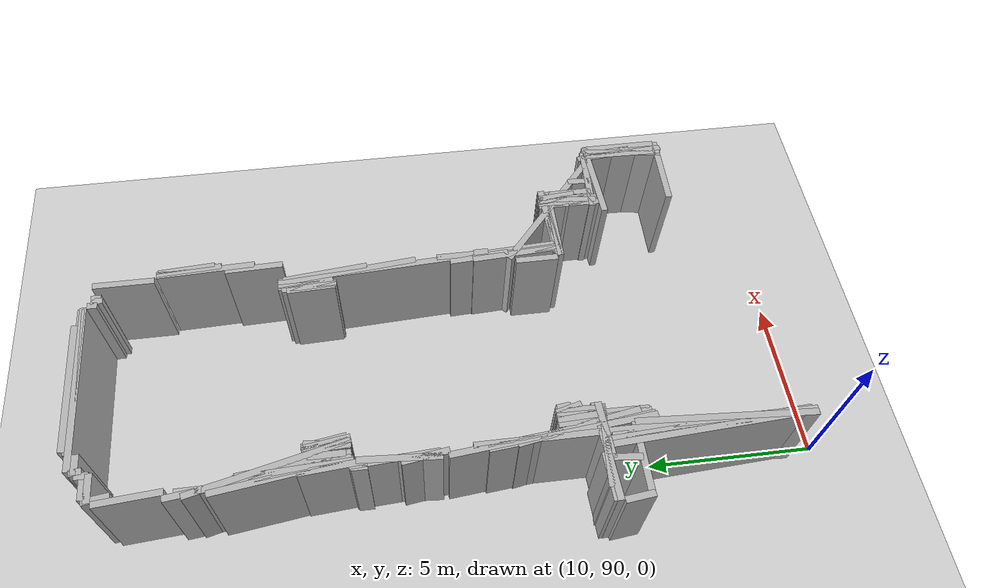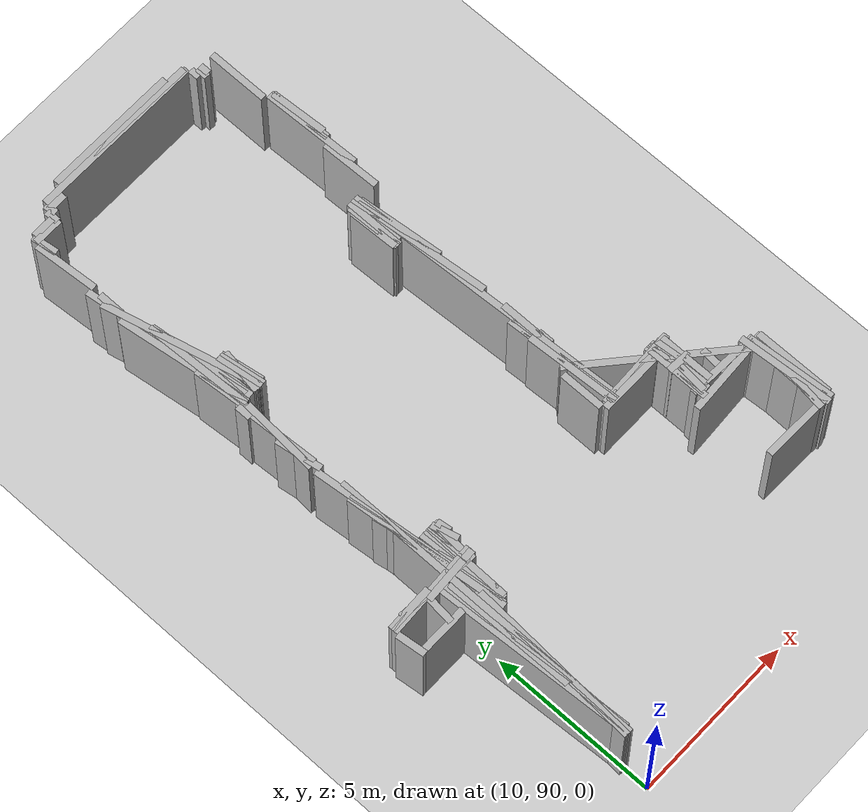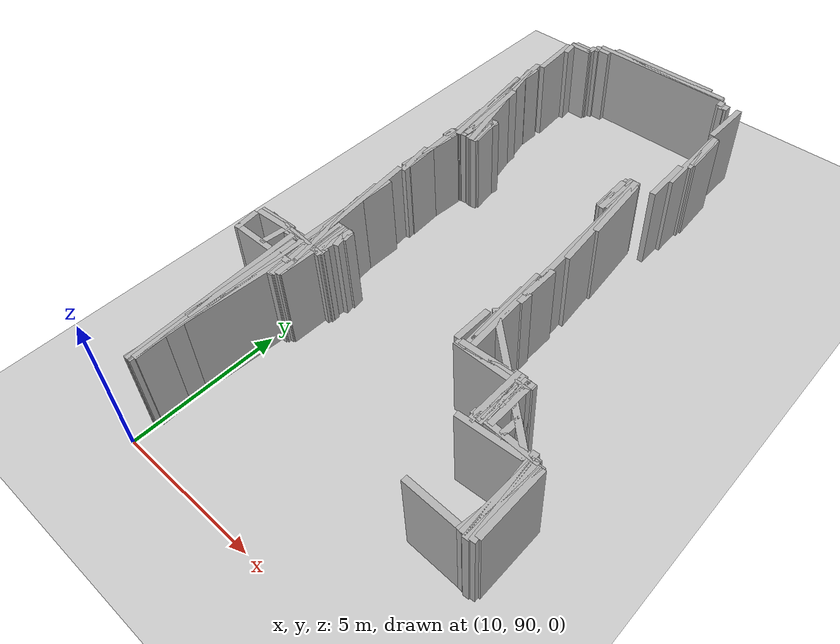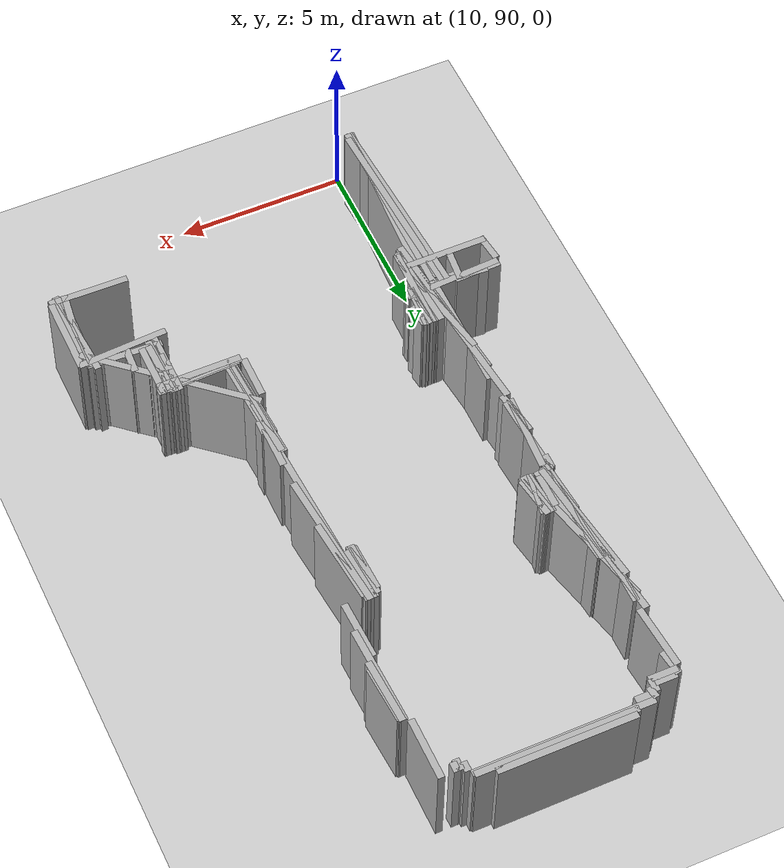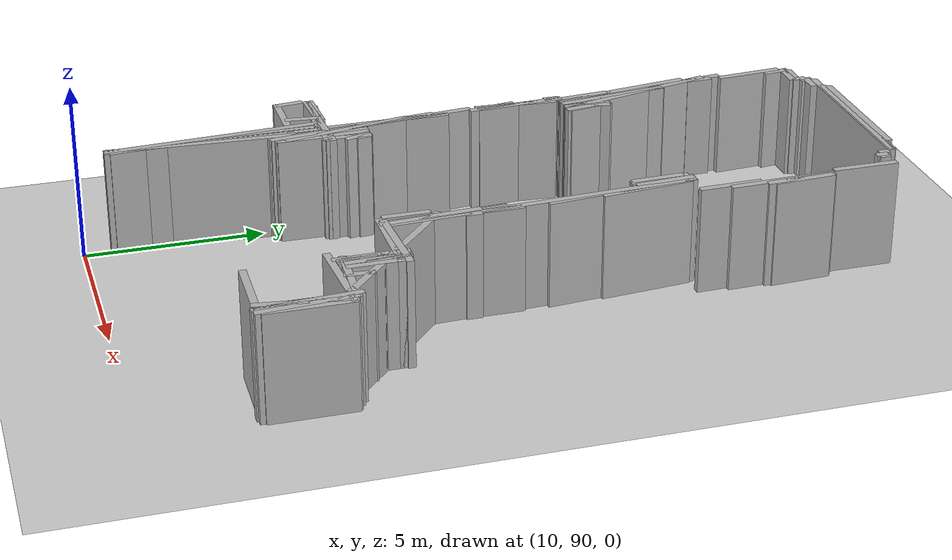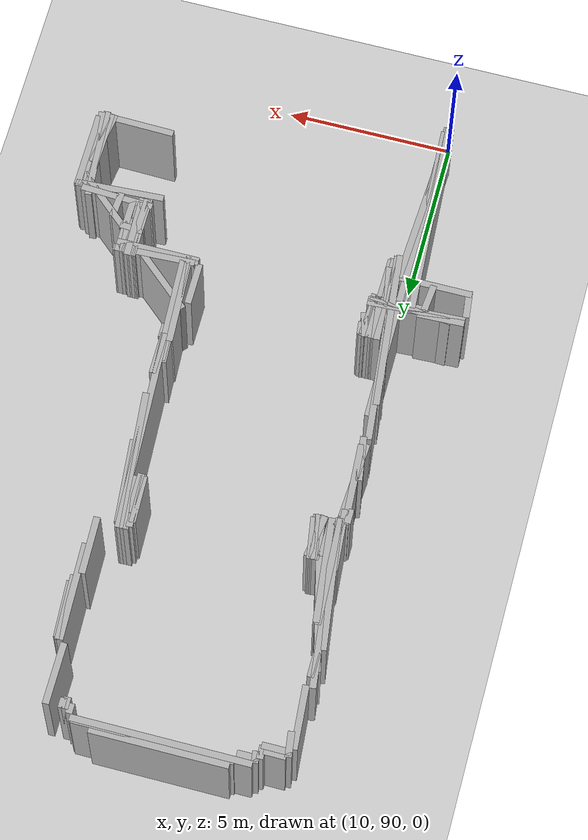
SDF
<sdf version="1.6">
 <world name="aboureyhan">
  <model name="ground_plane">
   <static>true</static>
   <link name="link">
    <collision name="collision">
     <geometry><plane><normal>0 0 1</normal><size>100 100</size></plane></geometry>
    </collision>
    <visual name="visual">
     <geometry><plane><normal>0 0 1</normal><size>500 500</size></plane></geometry>
     <material>
      <ambient>0.8 0.8 0.8 1</ambient>
      <diffuse>0.8 0.8 0.8 1</diffuse>
      <specular>0.8 0.8 0.8 1</specular>
     </material>
    </visual>
   </link>
  </model>
  <model name="wall_8">
   <static>true</static>
   <pose>9.875 102.55 1.5 0 0 -1.5108681716736894</pose>
   <link name="link">
    <collision name="collision">
     <geometry><box><size>2.5044959572736385 0.2 3.0</size></box></geometry>
    </collision>
    <visual name="visual">
     <geometry><box><size>2.5044959572736385 0.2 3.0</size></box></geometry>
     <material><ambient>0.5 0.5 0.5 1</ambient><diffuse>0.7 0.7 0.7 1</diffuse></material>
    </visual>
   </link>
  </model>
  <model name="wall_25">
   <static>true</static>
   <pose>9.775 93.75000000000001 1.5 0 0 -1.5125290238253635</pose>
   <link name="link">
    <collision name="collision"><geometry><box><size>6.010199663904686 0.2 3.0</size></box></geometry></collision>
    <visual name="visual">
     <geometry><box><size>6.010199663904686 0.2 3.0</size></box></geometry>
     <material><ambient>0.5 0.5 0.5 1</ambient><diffuse>0.7 0.7 0.7 1</diffuse></material>
    </visual>
   </link>
  </model>
  <model name="wall_41">
   <static>true</static>
   <pose>9.75 103.525 1.5 0 0 -1.5707963267948966</pose>
   <link name="link">
    <collision name="collision">
     <geometry><box><size>0.45000000000001705 0.2 3.0</size></box></geometry>
    </collision>
    <visual name="visual">
     <geometry><box><size>0.45000000000001705 0.2 3.0</size></box></geometry>
     <material><ambient>0.5 0.5 0.5 1</ambient><diffuse>0.7 0.7 0.7 1</diffuse></material>
    </visual>
   </link>
  </model>
  <model name="wall_42">
   <static>true</static>
   <pose>15.725000000000001 104.625 1.5 0 0 -1.5405025668761234</pose>
   <link name="link">
    <collision name="collision">
     <geometry><box><size>1.6507574019219233 0.2 3.0</size></box></geometry>
    </collision>
    <visual name="visual">
     <geometry><box><size>1.6507574019219233 0.2 3.0</size></box></geometry>
     <material><ambient>0.5 0.5 0.5 1</ambient><diffuse>0.7 0.7 0.7 1</diffuse></material>
    </visual>
   </link>
  </model>
  <model name="wall_48">
   <static>true</static>
   <pose>16.700000000000003 107.72500000000001 1.5 0 0 -1.5369109968907797</pose>
   <link name="link">
    <collision name="collision"><geometry><box><size>2.951694428629077 0.2 3.0</size></box></geometry></collision>
    <visual name="visual">
     <geometry><box><size>2.951694428629077 0.2 3.0</size></box></geometry>
     <material><ambient>0.5 0.5 0.5 1</ambient><diffuse>0.7 0.7 0.7 1</diffuse></material>
    </visual>
   </link>
  </model>
  <model name="wall_51">
   <static>true</static>
   <pose>9.825000000000001 104.275 1.5 0 0 -1.4898922276396647</pose>
   <link name="link">
    <collision name="collision">
     <geometry><box><size>1.8560711193270532 0.2 3.0</size></box></geometry>
    </collision>
    <visual name="visual">
     <geometry><box><size>1.8560711193270532 0.2 3.0</size></box></geometry>
     <material><ambient>0.5 0.5 0.5 1</ambient><diffuse>0.7 0.7 0.7 1</diffuse></material>
    </visual>
   </link>
  </model>
  <model name="wall_52">
   <static>true</static>
   <pose>10.025 105.275 1.5 0 0 -1.4601391056210018</pose>
   <link name="link">
    <collision name="collision"><geometry><box><size>3.169384798348101 0.2 3.0</size></box></geometry></collision>
    <visual name="visual">
     <geometry><box><size>3.169384798348101 0.2 3.0</size></box></geometry>
     <material><ambient>0.5 0.5 0.5 1</ambient><diffuse>0.7 0.7 0.7 1</diffuse></material>
    </visual>
   </link>
  </model>
  <model name="wall_81">
   <static>true</static>
   <pose>9.575000000000001 109.65 1.5 0 0 -1.492012365805752</pose>
   <link name="link">
    <collision name="collision">
     <geometry><box><size>1.9059118552545977 0.2 3.0</size></box></geometry>
    </collision>
    <visual name="visual">
     <geometry><box><size>1.9059118552545977 0.2 3.0</size></box></geometry>
     <material><ambient>0.5 0.5 0.5 1</ambient><diffuse>0.7 0.7 0.7 1</diffuse></material>
    </visual>
   </link>
  </model>
  <model name="wall_83">
   <static>true</static>
   <pose>9.9 93.825 1.5 0 0 -1.519559159391478</pose>
   <link name="link">
    <collision name="collision"><geometry><box><size>5.857687256930014 0.2 3.0</size></box></geometry></collision>
    <visual name="visual">
     <geometry><box><size>5.857687256930014 0.2 3.0</size></box></geometry>
     <material><ambient>0.5 0.5 0.5 1</ambient><diffuse>0.7 0.7 0.7 1</diffuse></material>
    </visual>
   </link>
  </model>
  <model name="wall_90">
   <static>true</static>
   <pose>10.100000000000001 98.17500000000001 1.5 0 0 -1.4685896086876427</pose>
   <link name="link">
    <collision name="collision"><geometry><box><size>5.880688735173792 0.2 3.0</size></box></geometry></collision>
    <visual name="visual">
     <geometry><box><size>5.880688735173792 0.2 3.0</size></box></geometry>
     <material><ambient>0.5 0.5 0.5 1</ambient><diffuse>0.7 0.7 0.7 1</diffuse></material>
    </visual>
   </link>
  </model>
  <model name="wall_108">
   <static>true</static>
   <pose>18.400000000000002 96.35000000000001 1.5 0 0 1.5707963267948966</pose>
   <link name="link">
    <collision name="collision">
     <geometry><box><size>1.6999999999999886 0.2 3.0</size></box></geometry>
    </collision>
    <visual name="visual">
     <geometry><box><size>1.6999999999999886 0.2 3.0</size></box></geometry>
     <material><ambient>0.5 0.5 0.5 1</ambient><diffuse>0.7 0.7 0.7 1</diffuse></material>
    </visual>
   </link>
  </model>
  <model name="wall_119">
   <static>true</static>
   <pose>9.75 106.22500000000001 1.5 0 0 -1.4525388176558172</pose>
   <link name="link">
    <collision name="collision"><geometry><box><size>5.085518655948488 0.2 3.0</size></box></geometry></collision>
    <visual name="visual">
     <geometry><box><size>5.085518655948488 0.2 3.0</size></box></geometry>
     <material><ambient>0.5 0.5 0.5 1</ambient><diffuse>0.7 0.7 0.7 1</diffuse></material>
    </visual>
   </link>
  </model>
  <model name="wall_127">
   <static>true</static>
   <pose>15.675000000000002 104.575 1.5 0 0 -1.536327225795388</pose>
   <link name="link">
    <collision name="collision">
     <geometry><box><size>1.4508618128546795 0.2 3.0</size></box></geometry>
    </collision>
    <visual name="visual">
     <geometry><box><size>1.4508618128546795 0.2 3.0</size></box></geometry>
     <material><ambient>0.5 0.5 0.5 1</ambient><diffuse>0.7 0.7 0.7 1</diffuse></material>
    </visual>
   </link>
  </model>
  <model name="wall_138">
   <static>true</static>
   <pose>10.500000000000002 104.35000000000001 1.5 0 0 1.4181469983996333</pose>
   <link name="link">
    <collision name="collision">
     <geometry><box><size>1.3152946437966018 0.2 3.0</size></box></geometry>
    </collision>
    <visual name="visual">
     <geometry><box><size>1.3152946437966018 0.2 3.0</size></box></geometry>
     <material><ambient>0.5 0.5 0.5 1</ambient><diffuse>0.7 0.7 0.7 1</diffuse></material>
    </visual>
   </link>
  </model>
  <model name="wall_158">
   <static>true</static>
   <pose>9.875 105.27499999999999 1.5 0 0 -1.5246752107803858</pose>
   <link name="link">
    <collision name="collision"><geometry><box><size>3.253459696999488 0.2 3.0</size></box></geometry></collision>
    <visual name="visual">
     <geometry><box><size>3.253459696999488 0.2 3.0</size></box></geometry>
     <material><ambient>0.5 0.5 0.5 1</ambient><diffuse>0.7 0.7 0.7 1</diffuse></material>
    </visual>
   </link>
  </model>
  <model name="wall_174">
   <static>true</static>
   <pose>15.950000000000003 97.65 1.5 0 0 1.5707963267948966</pose>
   <link name="link">
    <collision name="collision"><geometry><box><size>1.299999999999983 0.2 3.0</size></box></geometry></collision>
    <visual name="visual">
     <geometry><box><size>1.299999999999983 0.2 3.0</size></box></geometry>
     <material><ambient>0.5 0.5 0.5 1</ambient><diffuse>0.7 0.7 0.7 1</diffuse></material>
    </visual>
   </link>
  </model>
  <model name="wall_179">
   <static>true</static>
   <pose>16.225 101.275 1.5 0 0 -1.5182132651839544</pose>
   <link name="link">
    <collision name="collision"><geometry><box><size>8.561833915698184 0.2 3.0</size></box></geometry></collision>
    <visual name="visual">
     <geometry><box><size>8.561833915698184 0.2 3.0</size></box></geometry>
     <material><ambient>0.5 0.5 0.5 1</ambient><diffuse>0.7 0.7 0.7 1</diffuse></material>
    </visual>
   </link>
  </model>
  <model name="wall_216">
   <static>true</static>
   <pose>13.125000000000002 111.50000000000001 1.5 0 0 0.0</pose>
   <link name="link">
    <collision name="collision"><geometry><box><size>4.050000000000001 0.2 3.0</size></box></geometry></collision>
    <visual name="visual">
     <geometry><box><size>4.050000000000001 0.2 3.0</size></box></geometry>
     <material><ambient>0.5 0.5 0.5 1</ambient><diffuse>0.7 0.7 0.7 1</diffuse></material>
    </visual>
   </link>
  </model>
  <model name="wall_235">
   <static>true</static>
   <pose>19.825000000000003 94.2 1.5 0 0 1.5515679276951893</pose>
   <link name="link">
    <collision name="collision">
     <geometry><box><size>2.6004807247891915 0.2 3.0</size></box></geometry>
    </collision>
    <visual name="visual">
     <geometry><box><size>2.6004807247891915 0.2 3.0</size></box></geometry>
     <material><ambient>0.5 0.5 0.5 1</ambient><diffuse>0.7 0.7 0.7 1</diffuse></material>
    </visual>
   </link>
  </model>
  <model name="wall_258">
   <static>true</static>
   <pose>9.725 105.625 1.5 0 0 -1.4324453566177717</pose>
   <link name="link">
    <collision name="collision">
     <geometry><box><size>3.9881073205218707 0.2 3.0</size></box></geometry>
    </collision>
    <visual name="visual">
     <geometry><box><size>3.9881073205218707 0.2 3.0</size></box></geometry>
     <material><ambient>0.5 0.5 0.5 1</ambient><diffuse>0.7 0.7 0.7 1</diffuse></material>
    </visual>
   </link>
  </model>
  <model name="wall_259">
   <static>true</static>
   <pose>17.950000000000003 96.25000000000001 1.5 0 0 1.5707963267948966</pose>
   <link name="link">
    <collision name="collision"><geometry><box><size>2.0 0.2 3.0</size></box></geometry></collision>
    <visual name="visual">
     <geometry><box><size>2.0 0.2 3.0</size></box></geometry>
     <material><ambient>0.5 0.5 0.5 1</ambient><diffuse>0.7 0.7 0.7 1</diffuse></material>
    </visual>
   </link>
  </model>
  <model name="wall_261">
   <static>true</static>
   <pose>10.55 104.375 1.5 0 0 -1.4237179714064914</pose>
   <link name="link">
    <collision name="collision">
     <geometry><box><size>1.3647344063956128 0.2 3.0</size></box></geometry>
    </collision>
    <visual name="visual">
     <geometry><box><size>1.3647344063956128 0.2 3.0</size></box></geometry>
     <material><ambient>0.5 0.5 0.5 1</ambient><diffuse>0.7 0.7 0.7 1</diffuse></material>
    </visual>
   </link>
  </model>
  <model name="wall_262">
   <static>true</static>
   <pose>18.175000000000004 96.35000000000001 1.5 0 0 -1.541393038590891</pose>
   <link name="link">
    <collision name="collision">
     <geometry><box><size>1.7007351351694835 0.2 3.0</size></box></geometry>
    </collision>
    <visual name="visual">
     <geometry><box><size>1.7007351351694835 0.2 3.0</size></box></geometry>
     <material><ambient>0.5 0.5 0.5 1</ambient><diffuse>0.7 0.7 0.7 1</diffuse></material>
    </visual>
   </link>
  </model>
  <model name="wall_264">
   <static>true</static>
   <pose>13.350000000000001 111.35000000000001 1.5 0 0 0.0</pose>
   <link name="link">
    <collision name="collision"><geometry><box><size>4.700000000000003 0.2 3.0</size></box></geometry></collision>
    <visual name="visual">
     <geometry><box><size>4.700000000000003 0.2 3.0</size></box></geometry>
     <material><ambient>0.5 0.5 0.5 1</ambient><diffuse>0.7 0.7 0.7 1</diffuse></material>
    </visual>
   </link>
  </model>
  <model name="wall_271">
   <static>true</static>
   <pose>16.25 98.575 1.5 0 0 -1.5128901215467894</pose>
   <link name="link">
    <collision name="collision"><geometry><box><size>3.455792239125483 0.2 3.0</size></box></geometry></collision>
    <visual name="visual">
     <geometry><box><size>3.455792239125483 0.2 3.0</size></box></geometry>
     <material><ambient>0.5 0.5 0.5 1</ambient><diffuse>0.7 0.7 0.7 1</diffuse></material>
    </visual>
   </link>
  </model>
  <model name="wall_276">
   <static>true</static>
   <pose>16.625 106.27499999999999 1.5 0 0 -1.5422326689561363</pose>
   <link name="link">
    <collision name="collision">
     <geometry><box><size>1.7507141400011597 0.2 3.0</size></box></geometry>
    </collision>
    <visual name="visual">
     <geometry><box><size>1.7507141400011597 0.2 3.0</size></box></geometry>
     <material><ambient>0.5 0.5 0.5 1</ambient><diffuse>0.7 0.7 0.7 1</diffuse></material>
    </visual>
   </link>
  </model>
  <model name="wall_290">
   <static>true</static>
   <pose>10.05 93.325 1.5 0 0 1.5126096559812927</pose>
   <link name="link">
    <collision name="collision"><geometry><box><size>5.158730463980432 0.2 3.0</size></box></geometry></collision>
    <visual name="visual">
     <geometry><box><size>5.158730463980432 0.2 3.0</size></box></geometry>
     <material><ambient>0.5 0.5 0.5 1</ambient><diffuse>0.7 0.7 0.7 1</diffuse></material>
    </visual>
   </link>
  </model>
  <model name="wall_302">
   <static>true</static>
   <pose>15.8 104.675 1.5 0 0 1.5707963267948966</pose>
   <link name="link">
    <collision name="collision"><geometry><box><size>1.75 0.2 3.0</size></box></geometry></collision>
    <visual name="visual">
     <geometry><box><size>1.75 0.2 3.0</size></box></geometry>
     <material><ambient>0.5 0.5 0.5 1</ambient><diffuse>0.7 0.7 0.7 1</diffuse></material>
    </visual>
   </link>
  </model>
  <model name="wall_311">
   <static>true</static>
   <pose>10.875000000000002 97.75 1.5 0 0 -1.446441332248135</pose>
   <link name="link">
    <collision name="collision">
     <geometry><box><size>0.40311288741493323 0.2 3.0</size></box></geometry>
    </collision>
    <visual name="visual">
     <geometry><box><size>0.40311288741493323 0.2 3.0</size></box></geometry>
     <material><ambient>0.5 0.5 0.5 1</ambient><diffuse>0.7 0.7 0.7 1</diffuse></material>
    </visual>
   </link>
  </model>
  <model name="wall_312">
   <static>true</static>
   <pose>16.150000000000002 103.45 1.5 0 0 -1.4758446204521405</pose>
   <link name="link">
    <collision name="collision"><geometry><box><size>4.219004621945786 0.2 3.0</size></box></geometry></collision>
    <visual name="visual">
     <geometry><box><size>4.219004621945786 0.2 3.0</size></box></geometry>
     <material><ambient>0.5 0.5 0.5 1</ambient><diffuse>0.7 0.7 0.7 1</diffuse></material>
    </visual>
   </link>
  </model>
  <model name="wall_341">
   <static>true</static>
   <pose>16.5 110.17500000000001 1.5 0 0 1.5707963267948966</pose>
   <link name="link">
    <collision name="collision">
     <geometry><box><size>1.8499999999999943 0.2 3.0</size></box></geometry>
    </collision>
    <visual name="visual">
     <geometry><box><size>1.8499999999999943 0.2 3.0</size></box></geometry>
     <material><ambient>0.5 0.5 0.5 1</ambient><diffuse>0.7 0.7 0.7 1</diffuse></material>
    </visual>
   </link>
  </model>
  <model name="wall_348">
   <static>true</static>
   <pose>19.85 94.25 1.5 0 0 -1.4994888620096047</pose>
   <link name="link">
    <collision name="collision"><geometry><box><size>2.807133769523623 0.2 3.0</size></box></geometry></collision>
    <visual name="visual">
     <geometry><box><size>2.807133769523623 0.2 3.0</size></box></geometry>
     <material><ambient>0.5 0.5 0.5 1</ambient><diffuse>0.7 0.7 0.7 1</diffuse></material>
    </visual>
   </link>
  </model>
  <model name="wall_360">
   <static>true</static>
   <pose>17.325000000000003 97.05000000000001 1.5 0 0 0.0407936828678631</pose>
   <link name="link">
    <collision name="collision"><geometry><box><size>2.452039967047845 0.2 3.0</size></box></geometry></collision>
    <visual name="visual">
     <geometry><box><size>2.452039967047845 0.2 3.0</size></box></geometry>
     <material><ambient>0.5 0.5 0.5 1</ambient><diffuse>0.7 0.7 0.7 1</diffuse></material>
    </visual>
   </link>
  </model>
  <model name="wall_366">
   <static>true</static>
   <pose>17.25 96.89999999999999 1.5 0 0 0.0</pose>
   <link name="link">
    <collision name="collision"><geometry><box><size>2.5 0.2 3.0</size></box></geometry></collision>
    <visual name="visual">
     <geometry><box><size>2.5 0.2 3.0</size></box></geometry>
     <material><ambient>0.5 0.5 0.5 1</ambient><diffuse>0.7 0.7 0.7 1</diffuse></material>
    </visual>
   </link>
  </model>
  <model name="wall_368">
   <static>true</static>
   <pose>20.150000000000002 94.225 1.5 0 0 1.5707963267948966</pose>
   <link name="link">
    <collision name="collision">
     <geometry><box><size>2.3499999999999943 0.2 3.0</size></box></geometry>
    </collision>
    <visual name="visual">
     <geometry><box><size>2.3499999999999943 0.2 3.0</size></box></geometry>
     <material><ambient>0.5 0.5 0.5 1</ambient><diffuse>0.7 0.7 0.7 1</diffuse></material>
    </visual>
   </link>
  </model>
  <model name="wall_398">
   <static>true</static>
   <pose>10.225000000000001 97.425 1.5 0 0 -1.389703670263679</pose>
   <link name="link">
    <collision name="collision">
     <geometry><box><size>3.6090164865237284 0.2 3.0</size></box></geometry>
    </collision>
    <visual name="visual">
     <geometry><box><size>3.6090164865237284 0.2 3.0</size></box></geometry>
     <material><ambient>0.5 0.5 0.5 1</ambient><diffuse>0.7 0.7 0.7 1</diffuse></material>
    </visual>
   </link>
  </model>
  <model name="wall_414">
   <static>true</static>
   <pose>18.125 96.3 1.5 0 0 1.4876550949064546</pose>
   <link name="link">
    <collision name="collision">
     <geometry><box><size>1.8062391868188559 0.2 3.0</size></box></geometry>
    </collision>
    <visual name="visual">
     <geometry><box><size>1.8062391868188559 0.2 3.0</size></box></geometry>
     <material><ambient>0.5 0.5 0.5 1</ambient><diffuse>0.7 0.7 0.7 1</diffuse></material>
    </visual>
   </link>
  </model>
  <model name="wall_415">
   <static>true</static>
   <pose>16.05 110.95 1.5 0 0 -1.5707963267948966</pose>
   <link name="link">
    <collision name="collision">
     <geometry><box><size>0.30000000000001137 0.2 3.0</size></box></geometry>
    </collision>
    <visual name="visual">
     <geometry><box><size>0.30000000000001137 0.2 3.0</size></box></geometry>
     <material><ambient>0.5 0.5 0.5 1</ambient><diffuse>0.7 0.7 0.7 1</diffuse></material>
    </visual>
   </link>
  </model>
  <model name="wall_444">
   <static>true</static>
   <pose>10.0 105.97500000000001 1.5 0 0 -1.3335895279112528</pose>
   <link name="link">
    <collision name="collision"><geometry><box><size>4.681078935459229 0.2 3.0</size></box></geometry></collision>
    <visual name="visual">
     <geometry><box><size>4.681078935459229 0.2 3.0</size></box></geometry>
     <material><ambient>0.5 0.5 0.5 1</ambient><diffuse>0.7 0.7 0.7 1</diffuse></material>
    </visual>
   </link>
  </model>
  <model name="wall_445">
   <static>true</static>
   <pose>9.200000000000001 96.39999999999999 1.5 0 0 1.4711276743037367</pose>
   <link name="link">
    <collision name="collision">
     <geometry><box><size>1.0049875621120887 0.2 3.0</size></box></geometry>
    </collision>
    <visual name="visual">
     <geometry><box><size>1.0049875621120887 0.2 3.0</size></box></geometry>
     <material><ambient>0.5 0.5 0.5 1</ambient><diffuse>0.7 0.7 0.7 1</diffuse></material>
    </visual>
   </link>
  </model>
  <model name="wall_464">
   <static>true</static>
   <pose>10.350000000000001 110.9 1.5 0 0 1.5707963267948966</pose>
   <link name="link">
    <collision name="collision">
     <geometry><box><size>0.4000000000000057 0.2 3.0</size></box></geometry>
    </collision>
    <visual name="visual">
     <geometry><box><size>0.4000000000000057 0.2 3.0</size></box></geometry>
     <material><ambient>0.5 0.5 0.5 1</ambient><diffuse>0.7 0.7 0.7 1</diffuse></material>
    </visual>
   </link>
  </model>
  <model name="wall_467">
   <static>true</static>
   <pose>8.05 96.225 1.5 0 0 -1.45368758222803</pose>
   <link name="link">
    <collision name="collision"><geometry><box><size>0.855862138431179 0.2 3.0</size></box></geometry></collision>
    <visual name="visual">
     <geometry><box><size>0.855862138431179 0.2 3.0</size></box></geometry>
     <material><ambient>0.5 0.5 0.5 1</ambient><diffuse>0.7 0.7 0.7 1</diffuse></material>
    </visual>
   </link>
  </model>
  <model name="wall_471">
   <static>true</static>
   <pose>10.0 95.575 1.5 0 0 1.5707963267948966</pose>
   <link name="link">
    <collision name="collision"><geometry><box><size>9.649999999999977 0.2 3.0</size></box></geometry></collision>
    <visual name="visual">
     <geometry><box><size>9.649999999999977 0.2 3.0</size></box></geometry>
     <material><ambient>0.5 0.5 0.5 1</ambient><diffuse>0.7 0.7 0.7 1</diffuse></material>
    </visual>
   </link>
  </model>
  <model name="wall_480">
   <static>true</static>
   <pose>15.950000000000003 110.92500000000001 1.5 0 0 -1.5707963267948966</pose>
   <link name="link">
    <collision name="collision">
     <geometry><box><size>0.3499999999999943 0.2 3.0</size></box></geometry>
    </collision>
    <visual name="visual">
     <geometry><box><size>0.3499999999999943 0.2 3.0</size></box></geometry>
     <material><ambient>0.5 0.5 0.5 1</ambient><diffuse>0.7 0.7 0.7 1</diffuse></material>
    </visual>
   </link>
  </model>
  <model name="wall_487">
   <static>true</static>
   <pose>18.9 95.5 1.5 0 0 -0.04542327942157445</pose>
   <link name="link">
    <collision name="collision">
     <geometry><box><size>2.2022715545545233 0.2 3.0</size></box></geometry>
    </collision>
    <visual name="visual">
     <geometry><box><size>2.2022715545545233 0.2 3.0</size></box></geometry>
     <material><ambient>0.5 0.5 0.5 1</ambient><diffuse>0.7 0.7 0.7 1</diffuse></material>
    </visual>
   </link>
  </model>
  <model name="wall_498">
   <static>true</static>
   <pose>9.225 95.89999999999999 1.5 0 0 0.0</pose>
   <link name="link">
    <collision name="collision">
     <geometry><box><size>2.4499999999999993 0.2 3.0</size></box></geometry>
    </collision>
    <visual name="visual">
     <geometry><box><size>2.4499999999999993 0.2 3.0</size></box></geometry>
     <material><ambient>0.5 0.5 0.5 1</ambient><diffuse>0.7 0.7 0.7 1</diffuse></material>
    </visual>
   </link>
  </model>
  <model name="wall_507">
   <static>true</static>
   <pose>17.225 97.0 1.5 0 0 0.04079368286786304</pose>
   <link name="link">
    <collision name="collision"><geometry><box><size>2.452039967047848 0.2 3.0</size></box></geometry></collision>
    <visual name="visual">
     <geometry><box><size>2.452039967047848 0.2 3.0</size></box></geometry>
     <material><ambient>0.5 0.5 0.5 1</ambient><diffuse>0.7 0.7 0.7 1</diffuse></material>
    </visual>
   </link>
  </model>
  <model name="wall_512">
   <static>true</static>
   <pose>13.125 111.3 1.5 0 0 0.0</pose>
   <link name="link">
    <collision name="collision"><geometry><box><size>5.25 0.2 3.0</size></box></geometry></collision>
    <visual name="visual">
     <geometry><box><size>5.25 0.2 3.0</size></box></geometry>
     <material><ambient>0.5 0.5 0.5 1</ambient><diffuse>0.7 0.7 0.7 1</diffuse></material>
    </visual>
   </link>
  </model>
  <model name="wall_524">
   <static>true</static>
   <pose>10.6 104.425 1.5 0 0 -1.4121410646084958</pose>
   <link name="link">
    <collision name="collision">
     <geometry><box><size>1.2658988901172161 0.2 3.0</size></box></geometry>
    </collision>
    <visual name="visual">
     <geometry><box><size>1.2658988901172161 0.2 3.0</size></box></geometry>
     <material><ambient>0.5 0.5 0.5 1</ambient><diffuse>0.7 0.7 0.7 1</diffuse></material>
    </visual>
   </link>
  </model>
  <model name="wall_525">
   <static>true</static>
   <pose>10.500000000000002 104.375 1.5 0 0 -1.423717971406494</pose>
   <link name="link">
    <collision name="collision">
     <geometry><box><size>1.3647344063956124 0.2 3.0</size></box></geometry>
    </collision>
    <visual name="visual">
     <geometry><box><size>1.3647344063956124 0.2 3.0</size></box></geometry>
     <material><ambient>0.5 0.5 0.5 1</ambient><diffuse>0.7 0.7 0.7 1</diffuse></material>
    </visual>
   </link>
  </model>
  <model name="wall_528">
   <static>true</static>
   <pose>18.0 96.575 1.5 0 0 1.5707963267948966</pose>
   <link name="link">
    <collision name="collision">
     <geometry><box><size>1.3500000000000227 0.2 3.0</size></box></geometry>
    </collision>
    <visual name="visual">
     <geometry><box><size>1.3500000000000227 0.2 3.0</size></box></geometry>
     <material><ambient>0.5 0.5 0.5 1</ambient><diffuse>0.7 0.7 0.7 1</diffuse></material>
    </visual>
   </link>
  </model>
  <model name="wall_532">
   <static>true</static>
   <pose>18.200000000000003 96.375 1.5 0 0 -0.07130746478526616</pose>
   <link name="link">
    <collision name="collision">
     <geometry><box><size>0.7017834423809081 0.2 3.0</size></box></geometry>
    </collision>
    <visual name="visual">
     <geometry><box><size>0.7017834423809081 0.2 3.0</size></box></geometry>
     <material><ambient>0.5 0.5 0.5 1</ambient><diffuse>0.7 0.7 0.7 1</diffuse></material>
    </visual>
   </link>
  </model>
  <model name="wall_539">
   <static>true</static>
   <pose>10.525 97.325 1.5 0 0 -1.5337762109209667</pose>
   <link name="link">
    <collision name="collision">
     <geometry><box><size>1.3509256086106523 0.2 3.0</size></box></geometry>
    </collision>
    <visual name="visual">
     <geometry><box><size>1.3509256086106523 0.2 3.0</size></box></geometry>
     <material><ambient>0.5 0.5 0.5 1</ambient><diffuse>0.7 0.7 0.7 1</diffuse></material>
    </visual>
   </link>
  </model>
  <model name="wall_553">
   <static>true</static>
   <pose>10.475 111.075 1.5 0 0 -1.4288992721907399</pose>
   <link name="link">
    <collision name="collision">
     <geometry><box><size>0.3535533905932964 0.2 3.0</size></box></geometry>
    </collision>
    <visual name="visual">
     <geometry><box><size>0.3535533905932964 0.2 3.0</size></box></geometry>
     <material><ambient>0.5 0.5 0.5 1</ambient><diffuse>0.7 0.7 0.7 1</diffuse></material>
    </visual>
   </link>
  </model>
  <model name="wall_569">
   <static>true</static>
   <pose>16.8 108.3 1.5 0 0 -1.5120405040791727</pose>
   <link name="link">
    <collision name="collision"><geometry><box><size>1.702938636592629 0.2 3.0</size></box></geometry></collision>
    <visual name="visual">
     <geometry><box><size>1.702938636592629 0.2 3.0</size></box></geometry>
     <material><ambient>0.5 0.5 0.5 1</ambient><diffuse>0.7 0.7 0.7 1</diffuse></material>
    </visual>
   </link>
  </model>
  <model name="wall_576">
   <static>true</static>
   <pose>9.65 110.47500000000001 1.5 0 0 -1.4382447944982253</pose>
   <link name="link">
    <collision name="collision">
     <geometry><box><size>0.7566372975210776 0.2 3.0</size></box></geometry>
    </collision>
    <visual name="visual">
     <geometry><box><size>0.7566372975210776 0.2 3.0</size></box></geometry>
     <material><ambient>0.5 0.5 0.5 1</ambient><diffuse>0.7 0.7 0.7 1</diffuse></material>
    </visual>
   </link>
  </model>
  <model name="wall_581">
   <static>true</static>
   <pose>10.05 96.75 1.5 0 0 0.05875582271571926</pose>
   <link name="link">
    <collision name="collision">
     <geometry><box><size>1.7029386365926427 0.2 3.0</size></box></geometry>
    </collision>
    <visual name="visual">
     <geometry><box><size>1.7029386365926427 0.2 3.0</size></box></geometry>
     <material><ambient>0.5 0.5 0.5 1</ambient><diffuse>0.7 0.7 0.7 1</diffuse></material>
    </visual>
   </link>
  </model>
  <model name="wall_592">
   <static>true</static>
   <pose>15.8 111.05 1.5 0 0 -1.5707963267948966</pose>
   <link name="link">
    <collision name="collision">
     <geometry><box><size>0.30000000000001137 0.2 3.0</size></box></geometry>
    </collision>
    <visual name="visual">
     <geometry><box><size>0.30000000000001137 0.2 3.0</size></box></geometry>
     <material><ambient>0.5 0.5 0.5 1</ambient><diffuse>0.7 0.7 0.7 1</diffuse></material>
    </visual>
   </link>
  </model>
  <model name="wall_605">
   <static>true</static>
   <pose>16.25 99.37500000000001 1.5 0 0 -1.5137155443886332</pose>
   <link name="link">
    <collision name="collision">
     <geometry><box><size>1.7528548142958102 0.2 3.0</size></box></geometry>
    </collision>
    <visual name="visual">
     <geometry><box><size>1.7528548142958102 0.2 3.0</size></box></geometry>
     <material><ambient>0.5 0.5 0.5 1</ambient><diffuse>0.7 0.7 0.7 1</diffuse></material>
    </visual>
   </link>
  </model>
  <model name="wall_613">
   <static>true</static>
   <pose>9.450000000000001 96.825 1.5 0 0 0.05167808448242214</pose>
   <link name="link">
    <collision name="collision"><geometry><box><size>2.903876719146322 0.2 3.0</size></box></geometry></collision>
    <visual name="visual">
     <geometry><box><size>2.903876719146322 0.2 3.0</size></box></geometry>
     <material><ambient>0.5 0.5 0.5 1</ambient><diffuse>0.7 0.7 0.7 1</diffuse></material>
    </visual>
   </link>
  </model>
  <model name="wall_627">
   <static>true</static>
   <pose>16.35 100.05 1.5 0 0 -1.5707963267948966</pose>
   <link name="link">
    <collision name="collision">
     <geometry><box><size>1.3000000000000114 0.2 3.0</size></box></geometry>
    </collision>
    <visual name="visual">
     <geometry><box><size>1.3000000000000114 0.2 3.0</size></box></geometry>
     <material><ambient>0.5 0.5 0.5 1</ambient><diffuse>0.7 0.7 0.7 1</diffuse></material>
    </visual>
   </link>
  </model>
  <model name="wall_633">
   <static>true</static>
   <pose>18.875 95.275 1.5 0 0 0.056543436944819475</pose>
   <link name="link">
    <collision name="collision"><geometry><box><size>2.654241887997402 0.2 3.0</size></box></geometry></collision>
    <visual name="visual">
     <geometry><box><size>2.654241887997402 0.2 3.0</size></box></geometry>
     <material><ambient>0.5 0.5 0.5 1</ambient><diffuse>0.7 0.7 0.7 1</diffuse></material>
    </visual>
   </link>
  </model>
  <model name="wall_634">
   <static>true</static>
   <pose>10.8 97.62500000000001 1.5 0 0 -1.310193935047552</pose>
   <link name="link">
    <collision name="collision">
     <geometry><box><size>0.7762087348130019 0.2 3.0</size></box></geometry>
    </collision>
    <visual name="visual">
     <geometry><box><size>0.7762087348130019 0.2 3.0</size></box></geometry>
     <material><ambient>0.5 0.5 0.5 1</ambient><diffuse>0.7 0.7 0.7 1</diffuse></material>
    </visual>
   </link>
  </model>
  <model name="wall_647">
   <static>true</static>
   <pose>10.425 96.67500000000001 1.5 0 0 -1.51425288985008</pose>
   <link name="link">
    <collision name="collision">
     <geometry><box><size>2.6542418879974052 0.2 3.0</size></box></geometry>
    </collision>
    <visual name="visual">
     <geometry><box><size>2.6542418879974052 0.2 3.0</size></box></geometry>
     <material><ambient>0.5 0.5 0.5 1</ambient><diffuse>0.7 0.7 0.7 1</diffuse></material>
    </visual>
   </link>
  </model>
  <model name="wall_674">
   <static>true</static>
   <pose>18.05 96.75000000000001 1.5 0 0 -0.7188299996216245</pose>
   <link name="link">
    <collision name="collision"><geometry><box><size>5.315072906367325 0.2 3.0</size></box></geometry></collision>
    <visual name="visual">
     <geometry><box><size>5.315072906367325 0.2 3.0</size></box></geometry>
     <material><ambient>0.5 0.5 0.5 1</ambient><diffuse>0.7 0.7 0.7 1</diffuse></material>
    </visual>
   </link>
  </model>
  <model name="wall_697">
   <static>true</static>
   <pose>18.925 93.025 1.5 0 0 -0.023251622810455005</pose>
   <link name="link">
    <collision name="collision"><geometry><box><size>2.150581316760655 0.2 3.0</size></box></geometry></collision>
    <visual name="visual">
     <geometry><box><size>2.150581316760655 0.2 3.0</size></box></geometry>
     <material><ambient>0.5 0.5 0.5 1</ambient><diffuse>0.7 0.7 0.7 1</diffuse></material>
    </visual>
   </link>
  </model>
  <model name="wall_719">
   <static>true</static>
   <pose>16.225 98.22500000000001 1.5 0 0 -1.516304870554166</pose>
   <link name="link">
    <collision name="collision">
     <geometry><box><size>2.7540878707840823 0.2 3.0</size></box></geometry>
    </collision>
    <visual name="visual">
     <geometry><box><size>2.7540878707840823 0.2 3.0</size></box></geometry>
     <material><ambient>0.5 0.5 0.5 1</ambient><diffuse>0.7 0.7 0.7 1</diffuse></material>
    </visual>
   </link>
  </model>
  <model name="wall_720">
   <static>true</static>
   <pose>18.025 96.30000000000001 1.5 0 0 1.544486609541974</pose>
   <link name="link">
    <collision name="collision">
     <geometry><box><size>1.9006577808748268 0.2 3.0</size></box></geometry>
    </collision>
    <visual name="visual">
     <geometry><box><size>1.9006577808748268 0.2 3.0</size></box></geometry>
     <material><ambient>0.5 0.5 0.5 1</ambient><diffuse>0.7 0.7 0.7 1</diffuse></material>
    </visual>
   </link>
  </model>
  <model name="wall_728">
   <static>true</static>
   <pose>20.0 94.2 1.5 0 0 -1.4940244355251195</pose>
   <link name="link">
    <collision name="collision"><geometry><box><size>2.607680962081082 0.2 3.0</size></box></geometry></collision>
    <visual name="visual">
     <geometry><box><size>2.607680962081082 0.2 3.0</size></box></geometry>
     <material><ambient>0.5 0.5 0.5 1</ambient><diffuse>0.7 0.7 0.7 1</diffuse></material>
    </visual>
   </link>
  </model>
  <model name="wall_745">
   <static>true</static>
   <pose>15.900000000000002 104.725 1.5 0 0 -1.5102643070127888</pose>
   <link name="link">
    <collision name="collision">
     <geometry><box><size>1.6530275254816598 0.2 3.0</size></box></geometry>
    </collision>
    <visual name="visual">
     <geometry><box><size>1.6530275254816598 0.2 3.0</size></box></geometry>
     <material><ambient>0.5 0.5 0.5 1</ambient><diffuse>0.7 0.7 0.7 1</diffuse></material>
    </visual>
   </link>
  </model>
  <model name="wall_746">
   <static>true</static>
   <pose>9.875 102.42500000000001 1.5 0 0 1.50705301426221</pose>
   <link name="link">
    <collision name="collision">
     <geometry><box><size>2.3547823678633177 0.2 3.0</size></box></geometry>
    </collision>
    <visual name="visual">
     <geometry><box><size>2.3547823678633177 0.2 3.0</size></box></geometry>
     <material><ambient>0.5 0.5 0.5 1</ambient><diffuse>0.7 0.7 0.7 1</diffuse></material>
    </visual>
   </link>
  </model>
  <model name="wall_757">
   <static>true</static>
   <pose>10.650000000000002 97.325 1.5 0 0 1.5707963267948966</pose>
   <link name="link">
    <collision name="collision">
     <geometry><box><size>1.3500000000000227 0.2 3.0</size></box></geometry>
    </collision>
    <visual name="visual">
     <geometry><box><size>1.3500000000000227 0.2 3.0</size></box></geometry>
     <material><ambient>0.5 0.5 0.5 1</ambient><diffuse>0.7 0.7 0.7 1</diffuse></material>
    </visual>
   </link>
  </model>
  <model name="wall_783">
   <static>true</static>
   <pose>10.75 97.325 1.5 0 0 1.4968572891369565</pose>
   <link name="link">
    <collision name="collision"><geometry><box><size>1.353698637068111 0.2 3.0</size></box></geometry></collision>
    <visual name="visual">
     <geometry><box><size>1.353698637068111 0.2 3.0</size></box></geometry>
     <material><ambient>0.5 0.5 0.5 1</ambient><diffuse>0.7 0.7 0.7 1</diffuse></material>
    </visual>
   </link>
  </model>
  <model name="wall_786">
   <static>true</static>
   <pose>18.3 96.625 1.5 0 0 -1.4840579881189107</pose>
   <link name="link">
    <collision name="collision">
     <geometry><box><size>1.1543396380615254 0.2 3.0</size></box></geometry>
    </collision>
    <visual name="visual">
     <geometry><box><size>1.1543396380615254 0.2 3.0</size></box></geometry>
     <material><ambient>0.5 0.5 0.5 1</ambient><diffuse>0.7 0.7 0.7 1</diffuse></material>
    </visual>
   </link>
  </model>
  <model name="wall_801">
   <static>true</static>
   <pose>18.125 96.30000000000001 1.5 0 0 -1.544486609541974</pose>
   <link name="link">
    <collision name="collision">
     <geometry><box><size>1.9006577808748268 0.2 3.0</size></box></geometry>
    </collision>
    <visual name="visual">
     <geometry><box><size>1.9006577808748268 0.2 3.0</size></box></geometry>
     <material><ambient>0.5 0.5 0.5 1</ambient><diffuse>0.7 0.7 0.7 1</diffuse></material>
    </visual>
   </link>
  </model>
  <model name="wall_805">
   <static>true</static>
   <pose>9.600000000000001 108.075 1.5 0 0 1.5707963267948966</pose>
   <link name="link">
    <collision name="collision"><geometry><box><size>0.75 0.2 3.0</size></box></geometry></collision>
    <visual name="visual">
     <geometry><box><size>0.75 0.2 3.0</size></box></geometry>
     <material><ambient>0.5 0.5 0.5 1</ambient><diffuse>0.7 0.7 0.7 1</diffuse></material>
    </visual>
   </link>
  </model>
  <model name="wall_809">
   <static>true</static>
   <pose>10.4 104.375 1.5 0 0 -1.4968572891369576</pose>
   <link name="link">
    <collision name="collision">
     <geometry><box><size>1.3536986370680826 0.2 3.0</size></box></geometry>
    </collision>
    <visual name="visual">
     <geometry><box><size>1.3536986370680826 0.2 3.0</size></box></geometry>
     <material><ambient>0.5 0.5 0.5 1</ambient><diffuse>0.7 0.7 0.7 1</diffuse></material>
    </visual>
   </link>
  </model>
  <model name="wall_820">
   <static>true</static>
   <pose>10.100000000000001 97.60000000000001 1.5 0 0 -1.4670039863378541</pose>
   <link name="link">
    <collision name="collision"><geometry><box><size>4.825971404805473 0.2 3.0</size></box></geometry></collision>
    <visual name="visual">
     <geometry><box><size>4.825971404805473 0.2 3.0</size></box></geometry>
     <material><ambient>0.5 0.5 0.5 1</ambient><diffuse>0.7 0.7 0.7 1</diffuse></material>
    </visual>
   </link>
  </model>
  <model name="wall_831">
   <static>true</static>
   <pose>18.825000000000003 95.75 1.5 0 0 1.508377516798937</pose>
   <link name="link">
    <collision name="collision">
     <geometry><box><size>0.8015609770940528 0.2 3.0</size></box></geometry>
    </collision>
    <visual name="visual">
     <geometry><box><size>0.8015609770940528 0.2 3.0</size></box></geometry>
     <material><ambient>0.5 0.5 0.5 1</ambient><diffuse>0.7 0.7 0.7 1</diffuse></material>
    </visual>
   </link>
  </model>
  <model name="wall_852">
   <static>true</static>
   <pose>16.75 108.22500000000001 1.5 0 0 -1.5195591593914786</pose>
   <link name="link">
    <collision name="collision">
     <geometry><box><size>1.9525624189766522 0.2 3.0</size></box></geometry>
    </collision>
    <visual name="visual">
     <geometry><box><size>1.9525624189766522 0.2 3.0</size></box></geometry>
     <material><ambient>0.5 0.5 0.5 1</ambient><diffuse>0.7 0.7 0.7 1</diffuse></material>
    </visual>
   </link>
  </model>
  <model name="wall_860">
   <static>true</static>
   <pose>10.575000000000001 96.7 1.5 0 0 1.5515679276951893</pose>
   <link name="link">
    <collision name="collision">
     <geometry><box><size>2.6004807247891915 0.2 3.0</size></box></geometry>
    </collision>
    <visual name="visual">
     <geometry><box><size>2.6004807247891915 0.2 3.0</size></box></geometry>
     <material><ambient>0.5 0.5 0.5 1</ambient><diffuse>0.7 0.7 0.7 1</diffuse></material>
    </visual>
   </link>
  </model>
  <model name="wall_865">
   <static>true</static>
   <pose>9.875000000000002 94.65 1.5 0 0 -1.5579765163219959</pose>
   <link name="link">
    <collision name="collision"><geometry><box><size>3.900320499651284 0.2 3.0</size></box></geometry></collision>
    <visual name="visual">
     <geometry><box><size>3.900320499651284 0.2 3.0</size></box></geometry>
     <material><ambient>0.5 0.5 0.5 1</ambient><diffuse>0.7 0.7 0.7 1</diffuse></material>
    </visual>
   </link>
  </model>
  <model name="wall_883">
   <static>true</static>
   <pose>16.400000000000002 99.325 1.5 0 0 -1.5707963267948966</pose>
   <link name="link">
    <collision name="collision">
     <geometry><box><size>0.44999999999998863 0.2 3.0</size></box></geometry>
    </collision>
    <visual name="visual">
     <geometry><box><size>0.44999999999998863 0.2 3.0</size></box></geometry>
     <material><ambient>0.5 0.5 0.5 1</ambient><diffuse>0.7 0.7 0.7 1</diffuse></material>
    </visual>
   </link>
  </model>
  <model name="wall_892">
   <static>true</static>
   <pose>10.2 104.375 1.5 0 0 1.5707963267948966</pose>
   <link name="link">
    <collision name="collision"><geometry><box><size>1.049999999999983 0.2 3.0</size></box></geometry></collision>
    <visual name="visual">
     <geometry><box><size>1.049999999999983 0.2 3.0</size></box></geometry>
     <material><ambient>0.5 0.5 0.5 1</ambient><diffuse>0.7 0.7 0.7 1</diffuse></material>
    </visual>
   </link>
  </model>
  <model name="wall_911">
   <static>true</static>
   <pose>9.975000000000001 110.7 1.5 0 0 0.0</pose>
   <link name="link">
    <collision name="collision">
     <geometry><box><size>0.8500000000000014 0.2 3.0</size></box></geometry>
    </collision>
    <visual name="visual">
     <geometry><box><size>0.8500000000000014 0.2 3.0</size></box></geometry>
     <material><ambient>0.5 0.5 0.5 1</ambient><diffuse>0.7 0.7 0.7 1</diffuse></material>
    </visual>
   </link>
  </model>
  <model name="wall_922">
   <static>true</static>
   <pose>9.975000000000001 110.85000000000001 1.5 0 0 0.0</pose>
   <link name="link">
    <collision name="collision">
     <geometry><box><size>0.6499999999999986 0.2 3.0</size></box></geometry>
    </collision>
    <visual name="visual">
     <geometry><box><size>0.6499999999999986 0.2 3.0</size></box></geometry>
     <material><ambient>0.5 0.5 0.5 1</ambient><diffuse>0.7 0.7 0.7 1</diffuse></material>
    </visual>
   </link>
  </model>
  <model name="wall_943">
   <static>true</static>
   <pose>16.175 104.125 1.5 0 0 -1.4730694194361773</pose>
   <link name="link">
    <collision name="collision">
     <geometry><box><size>2.5622255950637745 0.2 3.0</size></box></geometry>
    </collision>
    <visual name="visual">
     <geometry><box><size>2.5622255950637745 0.2 3.0</size></box></geometry>
     <material><ambient>0.5 0.5 0.5 1</ambient><diffuse>0.7 0.7 0.7 1</diffuse></material>
    </visual>
   </link>
  </model>
  <model name="wall_951">
   <static>true</static>
   <pose>9.625 96.8 1.5 0 0 -0.08145204430586633</pose>
   <link name="link">
    <collision name="collision"><geometry><box><size>2.458149710656371 0.2 3.0</size></box></geometry></collision>
    <visual name="visual">
     <geometry><box><size>2.458149710656371 0.2 3.0</size></box></geometry>
     <material><ambient>0.5 0.5 0.5 1</ambient><diffuse>0.7 0.7 0.7 1</diffuse></material>
    </visual>
   </link>
  </model>
  <model name="wall_964">
   <static>true</static>
   <pose>9.85 101.725 1.5 0 0 -1.423717971406494</pose>
   <link name="link">
    <collision name="collision">
     <geometry><box><size>1.3647344063956124 0.2 3.0</size></box></geometry>
    </collision>
    <visual name="visual">
     <geometry><box><size>1.3647344063956124 0.2 3.0</size></box></geometry>
     <material><ambient>0.5 0.5 0.5 1</ambient><diffuse>0.7 0.7 0.7 1</diffuse></material>
    </visual>
   </link>
  </model>
  <model name="wall_972">
   <static>true</static>
   <pose>10.700000000000001 111.10000000000001 1.5 0 0 0.0</pose>
   <link name="link">
    <collision name="collision">
     <geometry><box><size>0.5999999999999979 0.2 3.0</size></box></geometry>
    </collision>
    <visual name="visual">
     <geometry><box><size>0.5999999999999979 0.2 3.0</size></box></geometry>
     <material><ambient>0.5 0.5 0.5 1</ambient><diffuse>0.7 0.7 0.7 1</diffuse></material>
    </visual>
   </link>
  </model>
  <model name="wall_986">
   <static>true</static>
   <pose>8.700000000000001 96.875 1.5 0 0 0.03569911267931175</pose>
   <link name="link">
    <collision name="collision">
     <geometry><box><size>1.4008925726121915 0.2 3.0</size></box></geometry>
    </collision>
    <visual name="visual">
     <geometry><box><size>1.4008925726121915 0.2 3.0</size></box></geometry>
     <material><ambient>0.5 0.5 0.5 1</ambient><diffuse>0.7 0.7 0.7 1</diffuse></material>
    </visual>
   </link>
  </model>
  <model name="wall_992">
   <static>true</static>
   <pose>19.875 94.14999999999999 1.5 0 0 1.431700385312826</pose>
   <link name="link">
    <collision name="collision">
     <geometry><box><size>2.5243811122728674 0.2 3.0</size></box></geometry>
    </collision>
    <visual name="visual">
     <geometry><box><size>2.5243811122728674 0.2 3.0</size></box></geometry>
     <material><ambient>0.5 0.5 0.5 1</ambient><diffuse>0.7 0.7 0.7 1</diffuse></material>
    </visual>
   </link>
  </model>
 </world>
</sdf>
